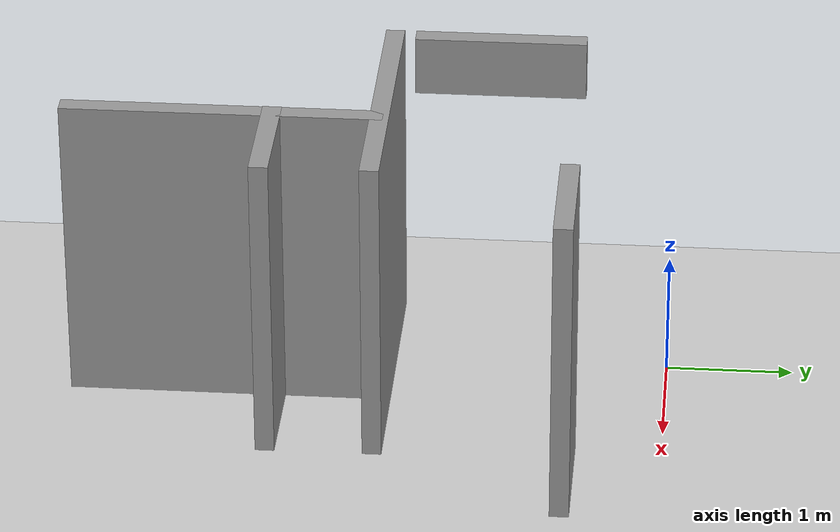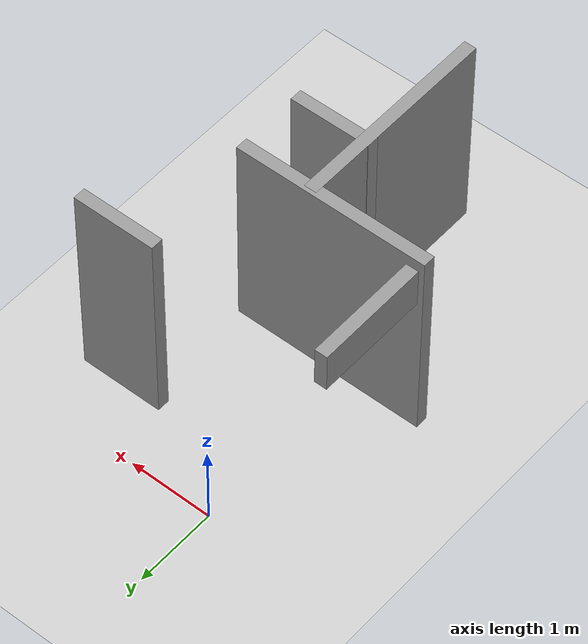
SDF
<sdf version="1.7">
 <world name="default">
  <model name="ground_plane">
   <static>1</static>
   <link name="link">
    <collision name="collision">
     <geometry><plane><normal>0 0 1</normal><size>100 100</size></plane></geometry>
     <surface>
      <contact><collide_bitmask>65535</collide_bitmask></contact>
      <friction><ode><mu>100</mu><mu2>50</mu2></ode></friction>
     </surface>
    </collision>
    <visual name="visual">
     <cast_shadows>0</cast_shadows>
     <geometry><plane><normal>0 0 1</normal><size>100 100</size></plane></geometry>
     <material>
      <script><uri>file://media/materials/scripts/gazebo.material</uri><name>Gazebo/Grey</name></script>
     </material>
    </visual>
   </link>
  </model>
  <model name="demo_clean">
   <link name="Wall_19">
    <pose>0.295923 -2.24288 0 0 -0 0</pose>
    <inertial>
     <inertia><ixx>0</ixx><ixy>0</ixy><ixz>0</ixz><iyy>0</iyy><iyz>0</iyz><izz>0</izz></inertia>
     <mass>0</mass>
    </inertial>
    <visual name="Wall_19_Visual">
     <pose>0 0 1.25 0 -0 0</pose>
     <geometry><box><size>2.34163 0.15 2.5</size></box></geometry>
     <material>
      <script><uri>file://media/materials/scripts/gazebo.material</uri><name>Gazebo/Grey</name></script>
      <ambient>1 1 1 1</ambient>
      <shader type="pixel"/>
     </material>
     <meta><layer>0</layer></meta>
    </visual>
    <collision name="Wall_19_Collision">
     <pose>0 0 1.25 0 -0 0</pose>
     <geometry><box><size>2.34163 0.15 2.5</size></box></geometry>
     <surface>
      <friction>
       <ode><mu>1</mu><mu2>1</mu2><fdir1>0 0 0</fdir1><slip1>0</slip1><slip2>0</slip2></ode>
       <torsional>
        <coefficient>1</coefficient>
        <patch_radius>0</patch_radius>
        <surface_radius>0</surface_radius>
        <use_patch_radius>1</use_patch_radius>
        <ode><slip>0</slip></ode>
       </torsional>
      </friction>
      <bounce><restitution_coefficient>0</restitution_coefficient><threshold>1e+06</threshold></bounce>
      <contact>
       <collide_without_contact>0</collide_without_contact>
       <collide_without_contact_bitmask>1</collide_without_contact_bitmask>
       <collide_bitmask>1</collide_bitmask>
       <ode>
        <soft_cfm>0</soft_cfm>
        <soft_erp>0.2</soft_erp>
        <kp>1e+13</kp>
        <kd>1</kd>
        <max_vel>0.01</max_vel>
        <min_depth>0</min_depth>
       </ode>
       <bullet>
        <split_impulse>1</split_impulse>
        <split_impulse_penetration_threshold>-0.01</split_impulse_penetration_threshold>
        <soft_cfm>0</soft_cfm>
        <soft_erp>0.2</soft_erp>
        <kp>1e+13</kp>
        <kd>1</kd>
       </bullet>
      </contact>
     </surface>
    </collision>
   </link>
   <link name="Wall_21">
    <pose>0.573753 -3.46553 0 0 0 -1.5708</pose>
    <visual name="Wall_21_Visual">
     <pose>0 0 1.25 0 -0 0</pose>
     <geometry><box><size>2.5 0.15 2.5</size></box></geometry>
     <material>
      <script><uri>file://media/materials/scripts/gazebo.material</uri><name>Gazebo/Grey</name></script>
      <ambient>1 1 1 1</ambient>
      <shader type="pixel"/>
     </material>
     <meta><layer>0</layer></meta>
    </visual>
    <collision name="Wall_21_Collision">
     <pose>0 0 1.25 0 -0 0</pose>
     <geometry><box><size>2.5 0.15 2.5</size></box></geometry>
     <surface>
      <friction>
       <ode><mu>1</mu><mu2>1</mu2><fdir1>0 0 0</fdir1><slip1>0</slip1><slip2>0</slip2></ode>
       <torsional>
        <coefficient>1</coefficient>
        <patch_radius>0</patch_radius>
        <surface_radius>0</surface_radius>
        <use_patch_radius>1</use_patch_radius>
        <ode><slip>0</slip></ode>
       </torsional>
      </friction>
      <bounce><restitution_coefficient>0</restitution_coefficient><threshold>1e+06</threshold></bounce>
      <contact>
       <collide_without_contact>0</collide_without_contact>
       <collide_without_contact_bitmask>1</collide_without_contact_bitmask>
       <collide_bitmask>1</collide_bitmask>
       <ode>
        <soft_cfm>0</soft_cfm>
        <soft_erp>0.2</soft_erp>
        <kp>1e+13</kp>
        <kd>1</kd>
        <max_vel>0.01</max_vel>
        <min_depth>0</min_depth>
       </ode>
       <bullet>
        <split_impulse>1</split_impulse>
        <split_impulse_penetration_threshold>-0.01</split_impulse_penetration_threshold>
        <soft_cfm>0</soft_cfm>
        <soft_erp>0.2</soft_erp>
        <kp>1e+13</kp>
        <kd>1</kd>
       </bullet>
      </contact>
     </surface>
    </collision>
   </link>
   <link name="Wall_23">
    <pose>0.983425 -3.07697 0 0 -0 0</pose>
    <inertial>
     <inertia><ixx>0</ixx><ixy>0</ixy><ixz>0</ixz><iyy>0</iyy><iyz>0</iyz><izz>0</izz></inertia>
     <mass>0</mass>
    </inertial>
    <visual name="Wall_23_Visual">
     <pose>0 0 1.25 0 -0 0</pose>
     <geometry><box><size>0.981708 0.15 2.5</size></box></geometry>
     <material>
      <script><uri>file://media/materials/scripts/gazebo.material</uri><name>Gazebo/Grey</name></script>
      <ambient>1 1 1 1</ambient>
      <shader type="pixel"/>
     </material>
     <meta><layer>0</layer></meta>
    </visual>
    <collision name="Wall_23_Collision">
     <pose>0 0 1.25 0 -0 0</pose>
     <geometry><box><size>0.981708 0.15 2.5</size></box></geometry>
     <surface>
      <friction>
       <ode><mu>1</mu><mu2>1</mu2><fdir1>0 0 0</fdir1><slip1>0</slip1><slip2>0</slip2></ode>
       <torsional>
        <coefficient>1</coefficient>
        <patch_radius>0</patch_radius>
        <surface_radius>0</surface_radius>
        <use_patch_radius>1</use_patch_radius>
        <ode><slip>0</slip></ode>
       </torsional>
      </friction>
      <bounce><restitution_coefficient>0</restitution_coefficient><threshold>1e+06</threshold></bounce>
      <contact>
       <collide_without_contact>0</collide_without_contact>
       <collide_without_contact_bitmask>1</collide_without_contact_bitmask>
       <collide_bitmask>1</collide_bitmask>
       <ode>
        <soft_cfm>0</soft_cfm>
        <soft_erp>0.2</soft_erp>
        <kp>1e+13</kp>
        <kd>1</kd>
        <max_vel>0.01</max_vel>
        <min_depth>0</min_depth>
       </ode>
       <bullet>
        <split_impulse>1</split_impulse>
        <split_impulse_penetration_threshold>-0.01</split_impulse_penetration_threshold>
        <soft_cfm>0</soft_cfm>
        <soft_erp>0.2</soft_erp>
        <kp>1e+13</kp>
        <kd>1</kd>
       </bullet>
      </contact>
     </surface>
    </collision>
   </link>
   <link name="Wall_28">
    <pose>1.74215 -0.745235 0 0 -0 0</pose>
    <visual name="Wall_28_Visual">
     <pose>0 0 1.25 0 -0 0</pose>
     <geometry><box><size>1 0.15 2.5</size></box></geometry>
     <material>
      <script><uri>file://media/materials/scripts/gazebo.material</uri><name>Gazebo/Grey</name></script>
      <ambient>1 1 1 1</ambient>
      <shader type="pixel"/>
     </material>
     <meta><layer>0</layer></meta>
    </visual>
    <collision name="Wall_28_Collision">
     <pose>0 0 1.25 0 -0 0</pose>
     <geometry><box><size>1 0.15 2.5</size></box></geometry>
     <surface>
      <friction>
       <ode><mu>1</mu><mu2>1</mu2><fdir1>0 0 0</fdir1><slip1>0</slip1><slip2>0</slip2></ode>
       <torsional>
        <coefficient>1</coefficient>
        <patch_radius>0</patch_radius>
        <surface_radius>0</surface_radius>
        <use_patch_radius>1</use_patch_radius>
        <ode><slip>0</slip></ode>
       </torsional>
      </friction>
      <bounce><restitution_coefficient>0</restitution_coefficient><threshold>1e+06</threshold></bounce>
      <contact>
       <collide_without_contact>0</collide_without_contact>
       <collide_without_contact_bitmask>1</collide_without_contact_bitmask>
       <collide_bitmask>1</collide_bitmask>
       <ode>
        <soft_cfm>0</soft_cfm>
        <soft_erp>0.2</soft_erp>
        <kp>1e+13</kp>
        <kd>1</kd>
        <max_vel>0.01</max_vel>
        <min_depth>0</min_depth>
       </ode>
       <bullet>
        <split_impulse>1</split_impulse>
        <split_impulse_penetration_threshold>-0.01</split_impulse_penetration_threshold>
        <soft_cfm>0</soft_cfm>
        <soft_erp>0.2</soft_erp>
        <kp>1e+13</kp>
        <kd>1</kd>
       </bullet>
      </contact>
     </surface>
    </collision>
   </link>
   <link name="Wall_28_clone_clone_clone">
    <pose>-0.802228 -1.39589 1.01168 0 0 -1.57004</pose>
    <inertial>
     <inertia><ixx>0</ixx><ixy>0</ixy><ixz>0</ixz><iyy>0</iyy><iyz>0</iyz><izz>0</izz></inertia>
     <mass>0</mass>
    </inertial>
    <gravity>0</gravity>
    <visual name="Wall_28_Visual">
     <pose>0 0 1.25 0 -0 0</pose>
     <geometry><box><size>1.35894 0.15 0.476648</size></box></geometry>
     <material>
      <script><uri>file://media/materials/scripts/gazebo.material</uri><name>Gazebo/Grey</name></script>
      <ambient>1 1 1 1</ambient>
      <shader type="pixel"><normal_map>__default__</normal_map></shader>
     </material>
     <meta><layer>0</layer></meta>
    </visual>
    <collision name="Wall_28_Collision">
     <pose>0 0 1.25 0 -0 0</pose>
     <geometry><box><size>1.35894 0.15 0.476648</size></box></geometry>
     <surface>
      <friction>
       <ode><mu>1</mu><mu2>1</mu2><fdir1>0 0 0</fdir1><slip1>0</slip1><slip2>0</slip2></ode>
       <torsional>
        <coefficient>1</coefficient>
        <patch_radius>0</patch_radius>
        <surface_radius>0</surface_radius>
        <use_patch_radius>1</use_patch_radius>
        <ode><slip>0</slip></ode>
       </torsional>
      </friction>
      <bounce><restitution_coefficient>0</restitution_coefficient><threshold>1e+06</threshold></bounce>
      <contact>
       <collide_without_contact>0</collide_without_contact>
       <collide_without_contact_bitmask>1</collide_without_contact_bitmask>
       <collide_bitmask>1</collide_bitmask>
       <ode>
        <soft_cfm>0</soft_cfm>
        <soft_erp>0.2</soft_erp>
        <kp>1e+13</kp>
        <kd>1</kd>
        <max_vel>0.01</max_vel>
        <min_depth>0</min_depth>
       </ode>
       <bullet>
        <split_impulse>1</split_impulse>
        <split_impulse_penetration_threshold>-0.01</split_impulse_penetration_threshold>
        <soft_cfm>0</soft_cfm>
        <soft_erp>0.2</soft_erp>
        <kp>1e+13</kp>
        <kd>1</kd>
       </bullet>
      </contact>
     </surface>
    </collision>
   </link>
   <static>1</static>
  </model>
 </world>
</sdf>
